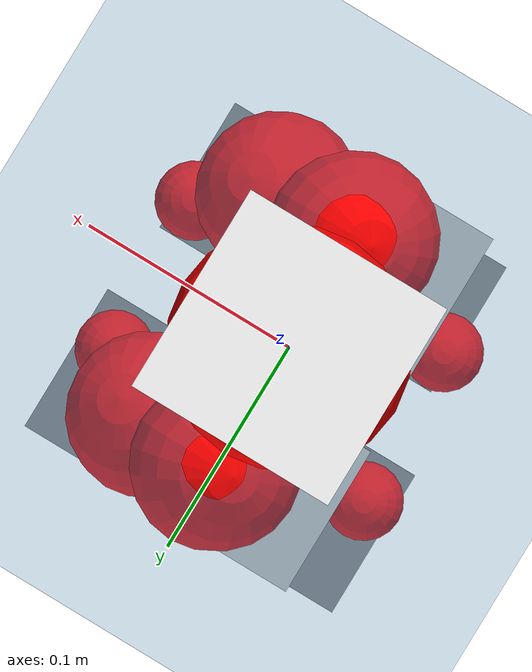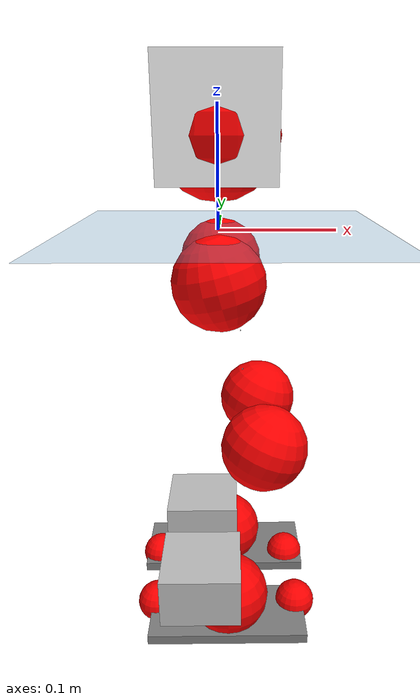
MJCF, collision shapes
<mujoco model="pi_12dof_release_v1">
  <compiler angle="radian" assetdir="assets" balanceinertia="true" inertiafromgeom="false"/>

  <option timestep="0.005" density="1.2" viscosity="2e-05"/>

  <size nkey="1"/>

  <visual>
    <quality shadowsize="8192"/>
    <map shadowclip="0.5"/>
  </visual>

  <default>
    <default class="/">
      <joint armature="0.01" damping="0.01" frictionloss="0.01"/>
      <geom contype="0" conaffinity="0" group="1" solref="-1000 -80"/>
      <site size="0.01 0.005 0.005" group="5"/>
      <general forcelimited="true" biastype="affine" gainprm="20" biasprm="0 -20 -0.5"/>
      <default class="foot">
        <geom size="0.0845 0.036 0.005" type="box" condim="6" group="4" priority="1" friction="0.9 0.2 0.2" solimp="0.015 1 0.005"/>
      </default>
      <default class="reward_collision_sphere">
        <geom group="5" rgba="1 0 0 1"/>
      </default>
    </default>
  </default>

  <asset>
    <texture type="skybox" colorspace="auto" name="//unnamed_texture_0" builtin="gradient" rgb1="0.95 0.95 0.95" rgb2="0.95 0.95 0.95" width="100" height="600"/>
    <texture type="2d" colorspace="auto" name="texplane" builtin="checker" rgb1="0.345 0.575 0.748" rgb2="0.345 0.575 0.748" markrgb="1 1 1" width="512" height="512"/>
    <material name="MatPlane" class="/" texture="texplane" texuniform="true" texrepeat="2 2" specular="0.9"/>
    <mesh name="baselink_1" class="/" file="baselink_1.STL"/>
    <mesh name="r_hip_pitch_link" class="/" file="r_hip_pitch_link.STL"/>
    <mesh name="r_hip_roll_link" class="/" file="r_hip_roll_link.STL"/>
    <mesh name="r_thigh_link" class="/" file="r_thigh_link.STL"/>
    <mesh name="r_calf_link" class="/" file="r_calf_link.STL"/>
    <mesh name="r_ankle_pitch_link" class="/" file="r_ankle_pitch_link.STL"/>
    <mesh name="r_ankle_roll_link" class="/" file="r_ankle_roll_link.STL"/>
    <mesh name="l_hip_pitch_link" class="/" file="l_hip_pitch_link.STL"/>
    <mesh name="l_hip_roll_link" class="/" file="l_hip_roll_link.STL"/>
    <mesh name="l_thigh_link" class="/" file="l_thigh_link.STL"/>
    <mesh name="l_calf_link" class="/" file="l_calf_link.STL"/>
    <mesh name="l_ankle_pitch_link" class="/" file="l_ankle_pitch_link.STL"/>
    <mesh name="l_ankle_roll_link" class="/" file="l_ankle_roll_link.STL"/>
  </asset>

  <worldbody>
    <geom name="floor" class="/" size="100 100 0.125" type="plane" group="0" material="MatPlane"/>
    <light name="toplight_shadow" class="/" pos="0 0 5" dir="0.0990148 0.0990148 -0.990148" type="directional" ambient="0.04 0.04 0.04" diffuse="0.55 0.55 0.55" specular="0.12 0.12 0.12"/>
    <light name="toplight_fill" class="/" pos="0 0 5" dir="0.0990148 0.0990148 -0.990148" type="directional" castshadow="false" ambient="0.04 0.04 0.04" diffuse="0.3 0.3 0.3" specular="0.08 0.08 0.08"/>
    <body name="trunk" pos="3.33854e-06 0.000162168 2.353e-05" quat="1 -5.91421e-06 -5.72666e-06 4.71295e-06">
      <inertial pos="0.00184737 -0.000930067 0.0433604" quat="0.690201 0.00879083 0.00523135 0.723546" mass="1.85128" diaginertia="0.0107609 0.00221094 0.00598458"/>
      <joint name="//unnamed_joint_0" type="free"/>
      <geom name="//unnamed_geom_1" class="/" type="mesh" density="0" rgba="1 1 1 1" mesh="baselink_1"/>
      <geom name="//unnamed_geom_2" class="/" size="0.0474182 0.0474182 0.0474182" pos="0 0 0.0860261" type="box" rgba="1 1 1 1"/>
      <geom name="//unnamed_geom_3" class="reward_collision_sphere" size="0.05216" pos="0 0 0.0752729"/>
      <site name="imu" class="/" pos="-0.00147945 -0.0046614 0.000854671" size="0.00948365"/>
      <camera name="track" class="/" pos="0 -1.50524 0" quat="0.707107 0.707107 0 0" mode="trackcom"/>
      <camera name="ego_camera" class="/" pos="0.076286 0 0.193559" quat="-0.5 -0.5 0.5 0.5"/>
      <body name="r_hip_pitch_link" pos="-0.00039765 -0.0153874 -0.0341623" quat="0.992199 3.568e-05 -0.124661 -1.18988e-05">
        <inertial pos="0.00104989 -0.0423977 -0.000957075" quat="-0.0198731 0.705678 -0.0284086 0.707684" mass="0.316899" diaginertia="0.000118087 2.38924e-05 0.000120286"/>
        <joint name="r_hip_pitch_joint" class="/" pos="0 0 0" axis="0.00153019 -0.999995 0.0027607" range="-1.74966 1.2684" armature="0.00945478" damping="0.0118892" frictionloss="0.0093825"/>
        <geom name="//unnamed_geom_4" class="/" type="mesh" density="0" rgba="0.75294 0.75294 0.75294 1" mesh="r_hip_pitch_link"/>
        <geom name="//unnamed_geom_5" class="/" size="0.000474182 0.000474182 0.000474182" type="box" rgba="0.75294 0.75294 0.75294 1"/>
        <body name="r_hip_roll_link" pos="0.00129932 -0.0400416 7.89146e-05" quat="1 -6.40741e-06 6.74191e-05 0.000189611">
          <inertial pos="-0.00129219 -0.00108439 -0.0654738" quat="0.705681 -0.0771779 -0.083401 0.699359" mass="0.331396" diaginertia="0.000362921 6.69821e-05 0.000184336"/>
          <joint name="r_hip_roll_joint" class="/" pos="0 0 0" axis="-0.999993 0.00308239 0.0021034" range="-0.121837 0.49903" armature="0.00978219" damping="0.00349822" frictionloss="0.00959345"/>
          <geom name="//unnamed_geom_6" class="/" type="mesh" density="0" rgba="0.75294 0.75294 0.75294 1" mesh="r_hip_roll_link"/>
          <geom name="//unnamed_geom_7" class="/" size="0.000474182 0.000474182 0.000474182" type="box" rgba="0.75294 0.75294 0.75294 1"/>
          <geom name="//unnamed_geom_8" class="reward_collision_sphere" size="0.0379346"/>
          <body name="r_thigh_link" pos="0.000597769 -0.000126385 -0.074227" quat="1 5.83032e-05 -0.000461759 2.52788e-05">
            <inertial pos="-0.00011172 0.000720936 -0.0524424" quat="0.73741 0.675446 1.77477e-05 -3.46068e-05" mass="0.0957755" diaginertia="0.000136572 2.31885e-05 8.20746e-05"/>
            <joint name="r_thigh_joint" class="/" pos="0 0 0" axis="0.000658162 0.000442735 -1" range="-0.290888 0.593611" armature="0.0098543" damping="0.00462618" frictionloss="0.00958428"/>
            <geom name="//unnamed_geom_9" class="/" type="mesh" density="0" rgba="0.75294 0.75294 0.75294 1" mesh="r_thigh_link"/>
            <geom name="//unnamed_geom_10" class="/" size="0.000474182 0.000474182 0.000474182" type="box" rgba="0.75294 0.75294 0.75294 1"/>
            <body name="r_calf_link" pos="0.000586038 -0.00129853 -0.0754346" quat="0.947649 1.2748e-06 0.319313 -3.8179e-05">
              <inertial pos="0.000481215 -0.000500188 -0.0748212" quat="0.99998 -0.00427566 0.000867751 0.00453001" mass="0.689377" diaginertia="0.00384069 0.00082714 0.000250765"/>
              <joint name="r_calf_joint" class="/" pos="0 0 0" axis="0.0033578 -0.999992 0.00196611" range="-1.61802 0.628619" armature="0.0094041" damping="0.00714776" frictionloss="0.00903144"/>
              <geom name="//unnamed_geom_11" class="/" type="mesh" density="0" rgba="0.75294 0.75294 0.75294 1" mesh="r_calf_link"/>
              <geom name="//unnamed_geom_12" class="/" size="0.000474182 0.000474182 0.000474182" type="box" rgba="0.75294 0.75294 0.75294 1"/>
              <geom name="//unnamed_geom_13" class="reward_collision_sphere" size="0.0379346"/>
              <body name="r_ankle_pitch_link" pos="0.00135767 0.00203462 -0.151572" quat="0.980066 0.000324101 -0.198672 0.000370169">
                <inertial pos="0.00583193 0.00126547 -0.000107829" quat="0.00636722 0.707956 -0.00161955 0.706226" mass="0.149446" diaginertia="0.000335336 5.36744e-05 0.000174059"/>
                <joint name="r_ankle_pitch_joint" class="/" pos="0 0 0" axis="0.0019169 -0.999976 -0.00661441" range="-1.31761 0.520884" armature="0.00934826" damping="0.00582363" frictionloss="0.00975364"/>
                <geom name="//unnamed_geom_14" class="/" type="mesh" density="0" rgba="0.75294 0.75294 0.75294 1" mesh="r_ankle_pitch_link"/>
                <geom name="//unnamed_geom_15" class="/" size="0.0369862 0.0379346 0.0237091" type="box" rgba="0.75294 0.75294 0.75294 1"/>
                <body name="r_ankle_roll_link" pos="0.0763372 0.00278088 0.000344264" quat="1 -0.000112539 2.97589e-05 -0.000228332">
                  <inertial pos="-0.0250608 0.000336645 -0.0162073" quat="0.560465 0.433799 0.431545 0.558091" mass="0.442751" diaginertia="0.00123873 0.000248795 0.000406313"/>
                  <joint name="r_ankle_roll_joint" class="/" pos="0 0 0" axis="-0.999999 0.00103676 -3.58996e-05" range="-0.176522 0.155109" armature="0.00943973" damping="0.01131" frictionloss="0.00993924"/>
                  <geom name="//unnamed_geom_16" class="/" type="mesh" density="0" rgba="0.75294 0.75294 0.75294 1" mesh="r_ankle_roll_link"/>
                  <geom name="//unnamed_geom_17" class="/" type="mesh" rgba="0.75294 0.75294 0.75294 1" mesh="r_ankle_roll_link"/>
                  <geom name="right_foot" class="foot" size="0.0747545 0.0342178 0.00459912" pos="-0.0518745 0 -0.0473144"/>
                  <geom name="//unnamed_geom_19" class="reward_collision_sphere" size="0.0379346" pos="-0.0508573 0 -0.0215065"/>
                  <geom name="//unnamed_geom_20" class="reward_collision_sphere" size="0.0189673" pos="0.0152572 0.0150524 -0.0430131"/>
                  <geom name="//unnamed_geom_21" class="reward_collision_sphere" size="0.0189673" pos="-0.122058 0.0150524 -0.0430131"/>
                  <site name="right_foot" class="foot" pos="-0.0518745 0 -0.0473144" size="0.00948365"/>
                </body>
              </body>
            </body>
          </body>
        </body>
      </body>
      <body name="l_hip_pitch_link" pos="-0.000741768 0.0175233 -0.0347356" quat="0.992189 -1.34293e-05 -0.124747 0.000161707">
        <inertial pos="0.00112019 0.0400755 -0.00116267" quat="-0.0386387 0.705337 0.0294109 0.707207" mass="0.328674" diaginertia="0.000138074 2.51124e-05 0.000143136"/>
        <joint name="l_hip_pitch_joint" class="/" pos="0 0 0" axis="-0.000157843 1 0.000126956" range="-1.25126 1.7487" armature="0.00965637" damping="0.00197277" frictionloss="0.00916835"/>
        <geom name="//unnamed_geom_22" class="/" type="mesh" density="0" rgba="0.75294 0.75294 0.75294 1" mesh="l_hip_pitch_link"/>
        <geom name="//unnamed_geom_23" class="/" size="0.000474182 0.000474182 0.000474182" type="box" rgba="0.75294 0.75294 0.75294 1"/>
        <body name="l_hip_roll_link" pos="0.00102046 0.0420544 -0.00115111" quat="1 -5.08681e-05 6.7933e-05 -5.81806e-05">
          <inertial pos="-0.00103107 -0.000169354 -0.0669152" quat="0.699268 -0.0733781 -0.0821586 0.706321" mass="0.335462" diaginertia="0.000359604 6.58808e-05 0.000183335"/>
          <joint name="l_hip_roll_joint" class="/" pos="0 0 0" axis="-0.999996 0.000417031 -0.00289697" range="-0.520998 0.11709" armature="0.00950423" damping="0.00738513" frictionloss="0.00920198"/>
          <geom name="//unnamed_geom_24" class="/" type="mesh" density="0" rgba="0.75294 0.75294 0.75294 1" mesh="l_hip_roll_link"/>
          <geom name="//unnamed_geom_25" class="/" size="0.000474182 0.000474182 0.000474182" type="box" rgba="0.75294 0.75294 0.75294 1"/>
          <geom name="//unnamed_geom_26" class="reward_collision_sphere" size="0.0379346"/>
          <body name="l_thigh_link" pos="0.000785508 -0.001892 -0.0744545" quat="1 6.97217e-05 -1.40388e-05 3.82141e-05">
            <inertial pos="0.000478138 -0.00134961 -0.0513707" quat="0.675281 0.737559 -0.00152324 0.000254034" mass="0.0940779" diaginertia="0.000135359 2.26958e-05 8.24432e-05"/>
            <joint name="l_thigh_joint" class="/" pos="0 0 0" axis="0.000260884 -0.000301746 -1" range="-0.592581 0.297405" armature="0.00989713" damping="0.00114988" frictionloss="0.00949624"/>
            <geom name="//unnamed_geom_27" class="/" type="mesh" density="0" rgba="0.75294 0.75294 0.75294 1" mesh="l_thigh_link"/>
            <geom name="//unnamed_geom_28" class="/" size="0.000474182 0.000474182 0.000474182" type="box" rgba="0.75294 0.75294 0.75294 1"/>
            <body name="l_calf_link" pos="-0.000737219 0.000220486 -0.074508" quat="0.947677 -3.44079e-05 0.319231 -9.9956e-05">
              <inertial pos="0.000200496 0.00240723 -0.075021" quat="0.999977 0.00374552 -7.33357e-05 0.00565529" mass="0.683244" diaginertia="0.00377591 0.000829031 0.000250814"/>
              <joint name="l_calf_joint" class="/" pos="0 0 0" axis="0.00327662 0.999989 0.00325506" stiffness="0.00167056" range="-0.642915 1.66575" armature="0.00940268" damping="0.00816434" frictionloss="0.00926265"/>
              <geom name="//unnamed_geom_29" class="/" type="mesh" density="0" rgba="0.75294 0.75294 0.75294 1" mesh="l_calf_link"/>
              <geom name="//unnamed_geom_30" class="/" size="0.000474182 0.000474182 0.000474182" type="box" rgba="0.75294 0.75294 0.75294 1"/>
              <geom name="//unnamed_geom_31" class="reward_collision_sphere" size="0.0379346"/>
              <body name="l_ankle_pitch_link" pos="9.3375e-05 0.000857853 -0.150954" quat="0.979996 -0.000187621 -0.199017 0.000183782">
                <inertial pos="0.00485921 -0.00121972 -0.00105566" quat="-0.00084904 0.707156 0.0036004 0.707048" mass="0.151098" diaginertia="0.000338519 5.39888e-05 0.000174272"/>
                <joint name="l_ankle_pitch_joint" class="/" pos="0 0 0" axis="-1.2342e-05 1 0.000973563" stiffness="0.00282602" range="-0.508971 1.28877" armature="0.00956772" damping="0.00815692" frictionloss="0.00950847"/>
                <geom name="//unnamed_geom_32" class="/" type="mesh" density="0" rgba="0.75294 0.75294 0.75294 1" mesh="l_ankle_pitch_link"/>
                <geom name="//unnamed_geom_33" class="/" size="0.0369862 0.0379346 0.0237091" type="box" rgba="0.75294 0.75294 0.75294 1"/>
                <body name="l_ankle_roll_link" pos="0.0747675 -0.00108653 -0.000309861" quat="1 -0.000100936 0.000488181 0.000205381">
                  <inertial pos="-0.0235371 -0.000501213 -0.0151849" quat="0.561816 0.429844 0.435275 0.556895" mass="0.444762" diaginertia="0.00124743 0.000249961 0.000410542"/>
                  <joint name="l_ankle_roll_joint" class="/" pos="0 0 0" axis="-0.999967 0.00674722 -0.00446476" stiffness="0.00134716" range="-0.127016 0.159177" armature="0.00992281" damping="0.0129437" frictionloss="0.00931891"/>
                  <geom name="//unnamed_geom_34" class="/" type="mesh" density="0" rgba="0.75294 0.75294 0.75294 1" mesh="l_ankle_roll_link"/>
                  <geom name="//unnamed_geom_35" class="/" type="mesh" rgba="0.75294 0.75294 0.75294 1" mesh="l_ankle_roll_link"/>
                  <geom name="left_foot" class="foot" size="0.0846654 0.0376847 0.00466939" pos="-0.0518745 0 -0.0473144"/>
                  <geom name="//unnamed_geom_37" class="reward_collision_sphere" size="0.0379346" pos="-0.0508573 0 -0.0215065"/>
                  <geom name="//unnamed_geom_38" class="reward_collision_sphere" size="0.0189673" pos="0.0152572 -0.0150524 -0.0430131"/>
                  <geom name="//unnamed_geom_39" class="reward_collision_sphere" size="0.0189673" pos="-0.122058 -0.0150524 -0.0430131"/>
                  <site name="left_foot" class="foot" pos="-0.0518745 0 -0.0473144" size="0.00948365"/>
                </body>
              </body>
            </body>
          </body>
        </body>
      </body>
    </body>
  </worldbody>

  <contact>
    <pair class="/" geom1="floor" geom2="right_foot" name="//unnamed_contact_1"/>
    <pair class="/" geom1="floor" geom2="left_foot" name="//unnamed_contact_0"/>
  </contact>

  <actuator>
    <general name="r_hip_pitch_joint" class="/" joint="r_hip_pitch_joint" forcerange="-19.8672 19.8672" gainprm="19.4559" biasprm="0 -19.4559 -0.467274"/>
    <general name="r_hip_roll_joint" class="/" joint="r_hip_roll_joint" forcerange="-19.9445 19.9445" gainprm="19.4559" biasprm="0 -19.4559 -0.467274"/>
    <general name="r_thigh_joint" class="/" joint="r_thigh_joint" forcerange="-19.5044 19.5044" gainprm="19.4559" biasprm="0 -19.4559 -0.467274"/>
    <general name="r_calf_joint" class="/" joint="r_calf_joint" forcerange="-19.4705 19.4705" gainprm="19.4559" biasprm="0 -19.4559 -0.467274"/>
    <general name="r_ankle_pitch_joint" class="/" joint="r_ankle_pitch_joint" forcerange="-20.608 20.608" gainprm="19.4559" biasprm="0 -19.4559 -0.467274"/>
    <general name="r_ankle_roll_joint" class="/" joint="r_ankle_roll_joint" forcerange="-20.6211 20.6211" gainprm="19.4559" biasprm="0 -19.4559 -0.467274"/>
    <general name="l_hip_pitch_joint" class="/" joint="l_hip_pitch_joint" forcerange="-21.1402 21.1402" gainprm="19.4559" biasprm="0 -19.4559 -0.467274"/>
    <general name="l_hip_roll_joint" class="/" joint="l_hip_roll_joint" forcerange="-20.4166 20.4166" gainprm="19.4559" biasprm="0 -19.4559 -0.467274"/>
    <general name="l_thigh_joint" class="/" joint="l_thigh_joint" forcerange="-20.081 20.081" gainprm="19.4559" biasprm="0 -19.4559 -0.467274"/>
    <general name="l_calf_joint" class="/" joint="l_calf_joint" forcerange="-20.6564 20.6564" gainprm="19.4559" biasprm="0 -19.4559 -0.467274"/>
    <general name="l_ankle_pitch_joint" class="/" joint="l_ankle_pitch_joint" forcerange="-20.638 20.638" gainprm="19.4559" biasprm="0 -19.4559 -0.467274"/>
    <general name="l_ankle_roll_joint" class="/" joint="l_ankle_roll_joint" forcerange="-19.3795 19.3795" gainprm="19.4559" biasprm="0 -19.4559 -0.467274"/>
  </actuator>

  <sensor>
    <gyro site="imu" name="imu_angular_velocity"/>
    <velocimeter site="imu" name="imu_linear_velocity"/>
    <framelinvel objtype="site" objname="left_foot" name="left_foot_global_linear_velocity"/>
    <framelinvel objtype="site" objname="right_foot" name="right_foot_global_linear_velocity"/>
  </sensor>

  <keyframe>
    <key name="home" qpos="0 0 0.291 1 0 0 0 0.4 0 0 -0.8 0.4 0 -0.4 0 0 0.8 -0.4 0"/>
  </keyframe>
</mujoco>
